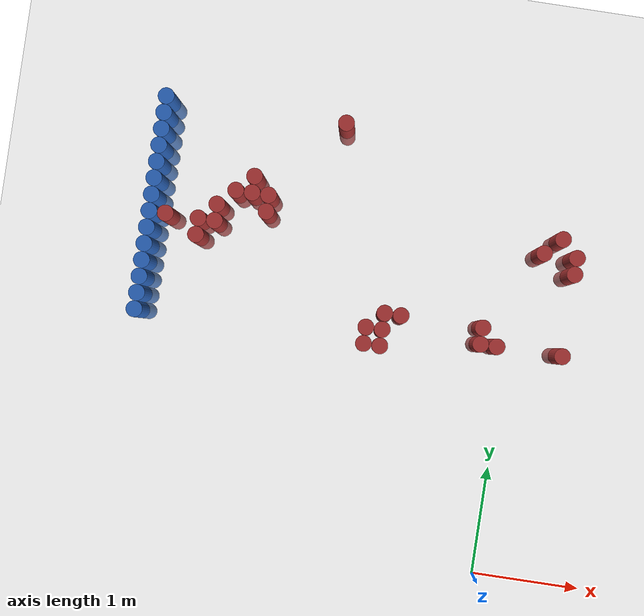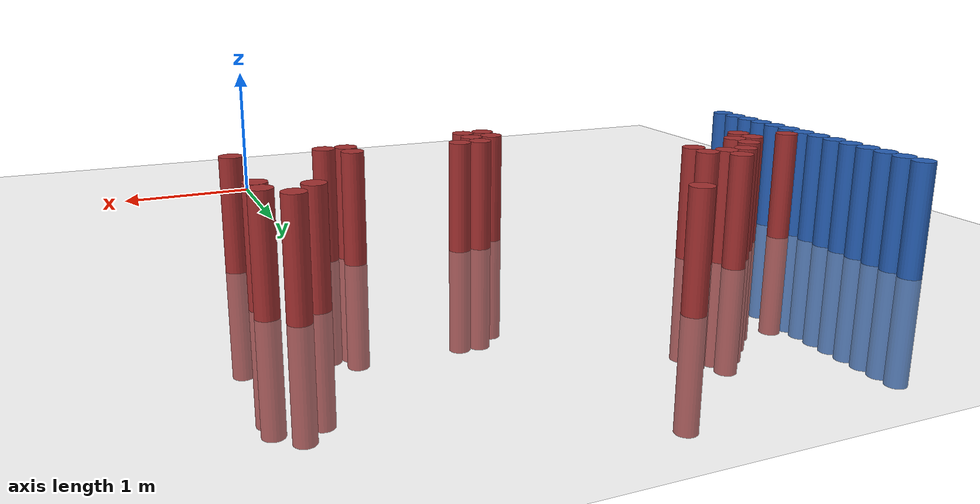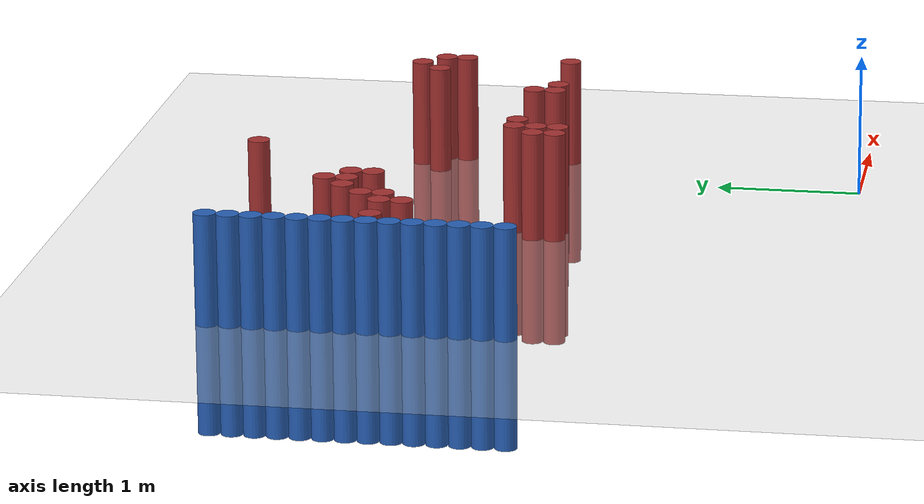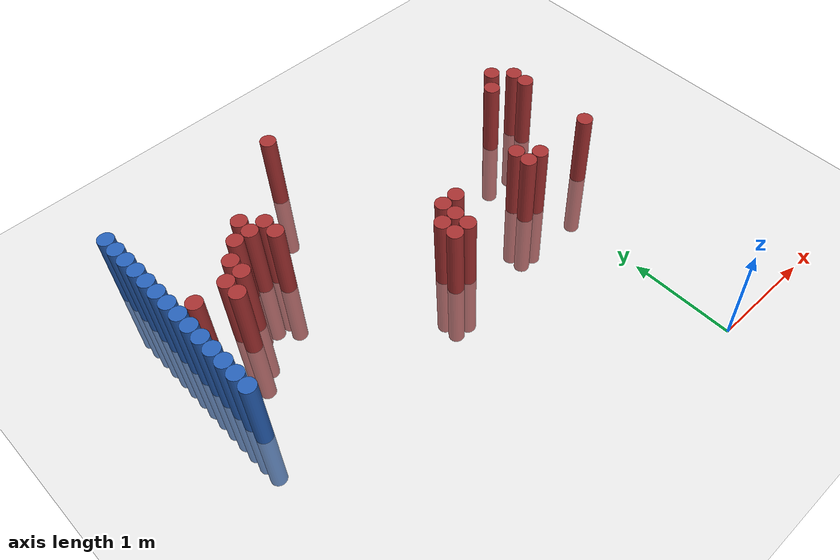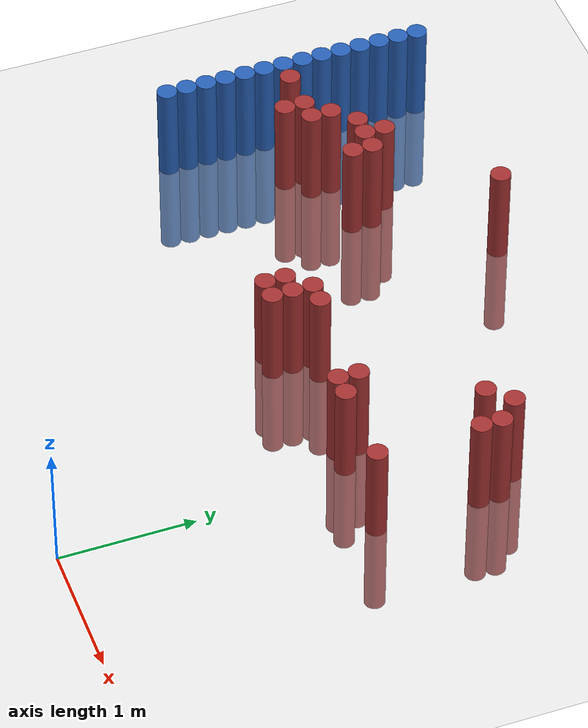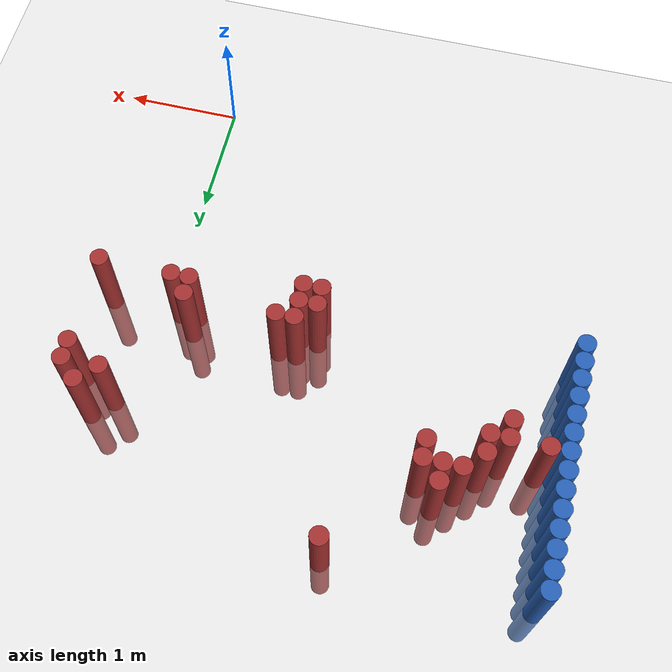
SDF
<sdf version="1.6">
 <world name="default">
  <model name="ground_plane">
   <static>1</static>
   <link name="link">
    <collision name="collision">
     <geometry><plane><normal>0 0 1</normal><size>100 100</size></plane></geometry>
     <surface><friction><ode><mu>100</mu><mu2>50</mu2></ode></friction></surface>
    </collision>
    <visual name="visual">
     <cast_shadows>0</cast_shadows>
     <geometry><plane><normal>0 0 1</normal><size>100 100</size></plane></geometry>
     <material>
      <script><uri>file://media/materials/scripts/gazebo.material</uri><name>Gazebo/Grey</name></script>
     </material>
    </visual>
   </link>
  </model>
  <model name="unit_cylinder_141">
   <static>1</static>
   <pose>-3.425000 1.975000 0.000000 0.000000 0.000000 0.000000</pose>
   <link name="link">
    <inertial>
     <mass>1</mass>
     <inertia><ixx>0.145833</ixx><ixy>0</ixy><ixz>0</ixz><iyy>0.145833</iyy><iyz>0</iyz><izz>0.125</izz></inertia>
    </inertial>
    <collision name="collision">
     <geometry><cylinder><radius>0.075000</radius><length>1.5</length></cylinder></geometry>
    </collision>
    <visual name="visual">
     <geometry><cylinder><radius>0.075000</radius><length>1.5</length></cylinder></geometry>
     <material>
      <ambient>0.152000 0.379000 0.720000 1</ambient>
      <diffuse>0.152000 0.379000 0.720000 1</diffuse>
     </material>
     <material>
      <script><name>Gazebo/Grey</name><uri>file://media/materials/scripts/gazebo.material</uri></script>
     </material>
    </visual>
   </link>
  </model>
  <model name="unit_cylinder_143">
   <static>1</static>
   <pose>-3.425000 2.125000 0.000000 0.000000 0.000000 0.000000</pose>
   <link name="link">
    <inertial>
     <mass>1</mass>
     <inertia><ixx>0.145833</ixx><ixy>0</ixy><ixz>0</ixz><iyy>0.145833</iyy><iyz>0</iyz><izz>0.125</izz></inertia>
    </inertial>
    <collision name="collision">
     <geometry><cylinder><radius>0.075000</radius><length>1.5</length></cylinder></geometry>
    </collision>
    <visual name="visual">
     <geometry><cylinder><radius>0.075000</radius><length>1.5</length></cylinder></geometry>
     <material>
      <ambient>0.152000 0.379000 0.720000 1</ambient>
      <diffuse>0.152000 0.379000 0.720000 1</diffuse>
     </material>
     <material>
      <script><name>Gazebo/Grey</name><uri>file://media/materials/scripts/gazebo.material</uri></script>
     </material>
    </visual>
   </link>
  </model>
  <model name="unit_cylinder_145">
   <static>1</static>
   <pose>-3.425000 2.275000 0.000000 0.000000 0.000000 0.000000</pose>
   <link name="link">
    <inertial>
     <mass>1</mass>
     <inertia><ixx>0.145833</ixx><ixy>0</ixy><ixz>0</ixz><iyy>0.145833</iyy><iyz>0</iyz><izz>0.125</izz></inertia>
    </inertial>
    <collision name="collision">
     <geometry><cylinder><radius>0.075000</radius><length>1.5</length></cylinder></geometry>
    </collision>
    <visual name="visual">
     <geometry><cylinder><radius>0.075000</radius><length>1.5</length></cylinder></geometry>
     <material>
      <ambient>0.152000 0.379000 0.720000 1</ambient>
      <diffuse>0.152000 0.379000 0.720000 1</diffuse>
     </material>
     <material>
      <script><name>Gazebo/Grey</name><uri>file://media/materials/scripts/gazebo.material</uri></script>
     </material>
    </visual>
   </link>
  </model>
  <model name="unit_cylinder_147">
   <static>1</static>
   <pose>-3.425000 2.425000 0.000000 0.000000 0.000000 0.000000</pose>
   <link name="link">
    <inertial>
     <mass>1</mass>
     <inertia><ixx>0.145833</ixx><ixy>0</ixy><ixz>0</ixz><iyy>0.145833</iyy><iyz>0</iyz><izz>0.125</izz></inertia>
    </inertial>
    <collision name="collision">
     <geometry><cylinder><radius>0.075000</radius><length>1.5</length></cylinder></geometry>
    </collision>
    <visual name="visual">
     <geometry><cylinder><radius>0.075000</radius><length>1.5</length></cylinder></geometry>
     <material>
      <ambient>0.152000 0.379000 0.720000 1</ambient>
      <diffuse>0.152000 0.379000 0.720000 1</diffuse>
     </material>
     <material>
      <script><name>Gazebo/Grey</name><uri>file://media/materials/scripts/gazebo.material</uri></script>
     </material>
    </visual>
   </link>
  </model>
  <model name="unit_cylinder_149">
   <static>1</static>
   <pose>-3.425000 2.575000 0.000000 0.000000 0.000000 0.000000</pose>
   <link name="link">
    <inertial>
     <mass>1</mass>
     <inertia><ixx>0.145833</ixx><ixy>0</ixy><ixz>0</ixz><iyy>0.145833</iyy><iyz>0</iyz><izz>0.125</izz></inertia>
    </inertial>
    <collision name="collision">
     <geometry><cylinder><radius>0.075000</radius><length>1.5</length></cylinder></geometry>
    </collision>
    <visual name="visual">
     <geometry><cylinder><radius>0.075000</radius><length>1.5</length></cylinder></geometry>
     <material>
      <ambient>0.152000 0.379000 0.720000 1</ambient>
      <diffuse>0.152000 0.379000 0.720000 1</diffuse>
     </material>
     <material>
      <script><name>Gazebo/Grey</name><uri>file://media/materials/scripts/gazebo.material</uri></script>
     </material>
    </visual>
   </link>
  </model>
  <model name="unit_cylinder_151">
   <static>1</static>
   <pose>-3.425000 2.725000 0.000000 0.000000 0.000000 0.000000</pose>
   <link name="link">
    <inertial>
     <mass>1</mass>
     <inertia><ixx>0.145833</ixx><ixy>0</ixy><ixz>0</ixz><iyy>0.145833</iyy><iyz>0</iyz><izz>0.125</izz></inertia>
    </inertial>
    <collision name="collision">
     <geometry><cylinder><radius>0.075000</radius><length>1.5</length></cylinder></geometry>
    </collision>
    <visual name="visual">
     <geometry><cylinder><radius>0.075000</radius><length>1.5</length></cylinder></geometry>
     <material>
      <ambient>0.152000 0.379000 0.720000 1</ambient>
      <diffuse>0.152000 0.379000 0.720000 1</diffuse>
     </material>
     <material>
      <script><name>Gazebo/Grey</name><uri>file://media/materials/scripts/gazebo.material</uri></script>
     </material>
    </visual>
   </link>
  </model>
  <model name="unit_cylinder_153">
   <static>1</static>
   <pose>-3.425000 2.875000 0.000000 0.000000 0.000000 0.000000</pose>
   <link name="link">
    <inertial>
     <mass>1</mass>
     <inertia><ixx>0.145833</ixx><ixy>0</ixy><ixz>0</ixz><iyy>0.145833</iyy><iyz>0</iyz><izz>0.125</izz></inertia>
    </inertial>
    <collision name="collision">
     <geometry><cylinder><radius>0.075000</radius><length>1.5</length></cylinder></geometry>
    </collision>
    <visual name="visual">
     <geometry><cylinder><radius>0.075000</radius><length>1.5</length></cylinder></geometry>
     <material>
      <ambient>0.152000 0.379000 0.720000 1</ambient>
      <diffuse>0.152000 0.379000 0.720000 1</diffuse>
     </material>
     <material>
      <script><name>Gazebo/Grey</name><uri>file://media/materials/scripts/gazebo.material</uri></script>
     </material>
    </visual>
   </link>
  </model>
  <model name="unit_cylinder_155">
   <static>1</static>
   <pose>-3.425000 3.025000 0.000000 0.000000 0.000000 0.000000</pose>
   <link name="link">
    <inertial>
     <mass>1</mass>
     <inertia><ixx>0.145833</ixx><ixy>0</ixy><ixz>0</ixz><iyy>0.145833</iyy><iyz>0</iyz><izz>0.125</izz></inertia>
    </inertial>
    <collision name="collision">
     <geometry><cylinder><radius>0.075000</radius><length>1.5</length></cylinder></geometry>
    </collision>
    <visual name="visual">
     <geometry><cylinder><radius>0.075000</radius><length>1.5</length></cylinder></geometry>
     <material>
      <ambient>0.152000 0.379000 0.720000 1</ambient>
      <diffuse>0.152000 0.379000 0.720000 1</diffuse>
     </material>
     <material>
      <script><name>Gazebo/Grey</name><uri>file://media/materials/scripts/gazebo.material</uri></script>
     </material>
    </visual>
   </link>
  </model>
  <model name="unit_cylinder_157">
   <static>1</static>
   <pose>-3.425000 3.175000 0.000000 0.000000 0.000000 0.000000</pose>
   <link name="link">
    <inertial>
     <mass>1</mass>
     <inertia><ixx>0.145833</ixx><ixy>0</ixy><ixz>0</ixz><iyy>0.145833</iyy><iyz>0</iyz><izz>0.125</izz></inertia>
    </inertial>
    <collision name="collision">
     <geometry><cylinder><radius>0.075000</radius><length>1.5</length></cylinder></geometry>
    </collision>
    <visual name="visual">
     <geometry><cylinder><radius>0.075000</radius><length>1.5</length></cylinder></geometry>
     <material>
      <ambient>0.152000 0.379000 0.720000 1</ambient>
      <diffuse>0.152000 0.379000 0.720000 1</diffuse>
     </material>
     <material>
      <script><name>Gazebo/Grey</name><uri>file://media/materials/scripts/gazebo.material</uri></script>
     </material>
    </visual>
   </link>
  </model>
  <model name="unit_cylinder_159">
   <static>1</static>
   <pose>-3.425000 3.325000 0.000000 0.000000 0.000000 0.000000</pose>
   <link name="link">
    <inertial>
     <mass>1</mass>
     <inertia><ixx>0.145833</ixx><ixy>0</ixy><ixz>0</ixz><iyy>0.145833</iyy><iyz>0</iyz><izz>0.125</izz></inertia>
    </inertial>
    <collision name="collision">
     <geometry><cylinder><radius>0.075000</radius><length>1.5</length></cylinder></geometry>
    </collision>
    <visual name="visual">
     <geometry><cylinder><radius>0.075000</radius><length>1.5</length></cylinder></geometry>
     <material>
      <ambient>0.152000 0.379000 0.720000 1</ambient>
      <diffuse>0.152000 0.379000 0.720000 1</diffuse>
     </material>
     <material>
      <script><name>Gazebo/Grey</name><uri>file://media/materials/scripts/gazebo.material</uri></script>
     </material>
    </visual>
   </link>
  </model>
  <model name="unit_cylinder_161">
   <static>1</static>
   <pose>-3.425000 3.475000 0.000000 0.000000 0.000000 0.000000</pose>
   <link name="link">
    <inertial>
     <mass>1</mass>
     <inertia><ixx>0.145833</ixx><ixy>0</ixy><ixz>0</ixz><iyy>0.145833</iyy><iyz>0</iyz><izz>0.125</izz></inertia>
    </inertial>
    <collision name="collision">
     <geometry><cylinder><radius>0.075000</radius><length>1.5</length></cylinder></geometry>
    </collision>
    <visual name="visual">
     <geometry><cylinder><radius>0.075000</radius><length>1.5</length></cylinder></geometry>
     <material>
      <ambient>0.152000 0.379000 0.720000 1</ambient>
      <diffuse>0.152000 0.379000 0.720000 1</diffuse>
     </material>
     <material>
      <script><name>Gazebo/Grey</name><uri>file://media/materials/scripts/gazebo.material</uri></script>
     </material>
    </visual>
   </link>
  </model>
  <model name="unit_cylinder_163">
   <static>1</static>
   <pose>-3.425000 3.625000 0.000000 0.000000 0.000000 0.000000</pose>
   <link name="link">
    <inertial>
     <mass>1</mass>
     <inertia><ixx>0.145833</ixx><ixy>0</ixy><ixz>0</ixz><iyy>0.145833</iyy><iyz>0</iyz><izz>0.125</izz></inertia>
    </inertial>
    <collision name="collision">
     <geometry><cylinder><radius>0.075000</radius><length>1.5</length></cylinder></geometry>
    </collision>
    <visual name="visual">
     <geometry><cylinder><radius>0.075000</radius><length>1.5</length></cylinder></geometry>
     <material>
      <ambient>0.152000 0.379000 0.720000 1</ambient>
      <diffuse>0.152000 0.379000 0.720000 1</diffuse>
     </material>
     <material>
      <script><name>Gazebo/Grey</name><uri>file://media/materials/scripts/gazebo.material</uri></script>
     </material>
    </visual>
   </link>
  </model>
  <model name="unit_cylinder_165">
   <static>1</static>
   <pose>-3.425000 3.775000 0.000000 0.000000 0.000000 0.000000</pose>
   <link name="link">
    <inertial>
     <mass>1</mass>
     <inertia><ixx>0.145833</ixx><ixy>0</ixy><ixz>0</ixz><iyy>0.145833</iyy><iyz>0</iyz><izz>0.125</izz></inertia>
    </inertial>
    <collision name="collision">
     <geometry><cylinder><radius>0.075000</radius><length>1.5</length></cylinder></geometry>
    </collision>
    <visual name="visual">
     <geometry><cylinder><radius>0.075000</radius><length>1.5</length></cylinder></geometry>
     <material>
      <ambient>0.152000 0.379000 0.720000 1</ambient>
      <diffuse>0.152000 0.379000 0.720000 1</diffuse>
     </material>
     <material>
      <script><name>Gazebo/Grey</name><uri>file://media/materials/scripts/gazebo.material</uri></script>
     </material>
    </visual>
   </link>
  </model>
  <model name="unit_cylinder_167">
   <static>1</static>
   <pose>-3.425000 3.925000 0.000000 0.000000 0.000000 0.000000</pose>
   <link name="link">
    <inertial>
     <mass>1</mass>
     <inertia><ixx>0.145833</ixx><ixy>0</ixy><ixz>0</ixz><iyy>0.145833</iyy><iyz>0</iyz><izz>0.125</izz></inertia>
    </inertial>
    <collision name="collision">
     <geometry><cylinder><radius>0.075000</radius><length>1.5</length></cylinder></geometry>
    </collision>
    <visual name="visual">
     <geometry><cylinder><radius>0.075000</radius><length>1.5</length></cylinder></geometry>
     <material>
      <ambient>0.152000 0.379000 0.720000 1</ambient>
      <diffuse>0.152000 0.379000 0.720000 1</diffuse>
     </material>
     <material>
      <script><name>Gazebo/Grey</name><uri>file://media/materials/scripts/gazebo.material</uri></script>
     </material>
    </visual>
   </link>
  </model>
  <model name="unit_cylinder_234">
   <static>1</static>
   <pose>-3.425000 1.975000 0.000000 0.000000 0.000000 0.000000</pose>
   <link name="link">
    <inertial>
     <mass>1</mass>
     <inertia><ixx>0.145833</ixx><ixy>0</ixy><ixz>0</ixz><iyy>0.145833</iyy><iyz>0</iyz><izz>0.125</izz></inertia>
    </inertial>
    <collision name="collision">
     <geometry><cylinder><radius>0.075000</radius><length>1.5</length></cylinder></geometry>
    </collision>
    <visual name="visual">
     <geometry><cylinder><radius>0.075000</radius><length>1.5</length></cylinder></geometry>
     <material>
      <ambient>0.152000 0.379000 0.720000 1</ambient>
      <diffuse>0.152000 0.379000 0.720000 1</diffuse>
     </material>
     <material>
      <script><name>Gazebo/Grey</name><uri>file://media/materials/scripts/gazebo.material</uri></script>
     </material>
    </visual>
   </link>
  </model>
  <model name="unit_cylinder_235">
   <static>1</static>
   <pose>-3.425000 2.125000 0.000000 0.000000 0.000000 0.000000</pose>
   <link name="link">
    <inertial>
     <mass>1</mass>
     <inertia><ixx>0.145833</ixx><ixy>0</ixy><ixz>0</ixz><iyy>0.145833</iyy><iyz>0</iyz><izz>0.125</izz></inertia>
    </inertial>
    <collision name="collision">
     <geometry><cylinder><radius>0.075000</radius><length>1.5</length></cylinder></geometry>
    </collision>
    <visual name="visual">
     <geometry><cylinder><radius>0.075000</radius><length>1.5</length></cylinder></geometry>
     <material>
      <ambient>0.152000 0.379000 0.720000 1</ambient>
      <diffuse>0.152000 0.379000 0.720000 1</diffuse>
     </material>
     <material>
      <script><name>Gazebo/Grey</name><uri>file://media/materials/scripts/gazebo.material</uri></script>
     </material>
    </visual>
   </link>
  </model>
  <model name="unit_cylinder_236">
   <static>1</static>
   <pose>-3.425000 2.275000 0.000000 0.000000 0.000000 0.000000</pose>
   <link name="link">
    <inertial>
     <mass>1</mass>
     <inertia><ixx>0.145833</ixx><ixy>0</ixy><ixz>0</ixz><iyy>0.145833</iyy><iyz>0</iyz><izz>0.125</izz></inertia>
    </inertial>
    <collision name="collision">
     <geometry><cylinder><radius>0.075000</radius><length>1.5</length></cylinder></geometry>
    </collision>
    <visual name="visual">
     <geometry><cylinder><radius>0.075000</radius><length>1.5</length></cylinder></geometry>
     <material>
      <ambient>0.152000 0.379000 0.720000 1</ambient>
      <diffuse>0.152000 0.379000 0.720000 1</diffuse>
     </material>
     <material>
      <script><name>Gazebo/Grey</name><uri>file://media/materials/scripts/gazebo.material</uri></script>
     </material>
    </visual>
   </link>
  </model>
  <model name="unit_cylinder_237">
   <static>1</static>
   <pose>-3.425000 2.425000 0.000000 0.000000 0.000000 0.000000</pose>
   <link name="link">
    <inertial>
     <mass>1</mass>
     <inertia><ixx>0.145833</ixx><ixy>0</ixy><ixz>0</ixz><iyy>0.145833</iyy><iyz>0</iyz><izz>0.125</izz></inertia>
    </inertial>
    <collision name="collision">
     <geometry><cylinder><radius>0.075000</radius><length>1.5</length></cylinder></geometry>
    </collision>
    <visual name="visual">
     <geometry><cylinder><radius>0.075000</radius><length>1.5</length></cylinder></geometry>
     <material>
      <ambient>0.152000 0.379000 0.720000 1</ambient>
      <diffuse>0.152000 0.379000 0.720000 1</diffuse>
     </material>
     <material>
      <script><name>Gazebo/Grey</name><uri>file://media/materials/scripts/gazebo.material</uri></script>
     </material>
    </visual>
   </link>
  </model>
  <model name="unit_cylinder_238">
   <static>1</static>
   <pose>-3.425000 2.575000 0.000000 0.000000 0.000000 0.000000</pose>
   <link name="link">
    <inertial>
     <mass>1</mass>
     <inertia><ixx>0.145833</ixx><ixy>0</ixy><ixz>0</ixz><iyy>0.145833</iyy><iyz>0</iyz><izz>0.125</izz></inertia>
    </inertial>
    <collision name="collision">
     <geometry><cylinder><radius>0.075000</radius><length>1.5</length></cylinder></geometry>
    </collision>
    <visual name="visual">
     <geometry><cylinder><radius>0.075000</radius><length>1.5</length></cylinder></geometry>
     <material>
      <ambient>0.152000 0.379000 0.720000 1</ambient>
      <diffuse>0.152000 0.379000 0.720000 1</diffuse>
     </material>
     <material>
      <script><name>Gazebo/Grey</name><uri>file://media/materials/scripts/gazebo.material</uri></script>
     </material>
    </visual>
   </link>
  </model>
  <model name="unit_cylinder_239">
   <static>1</static>
   <pose>-3.425000 2.725000 0.000000 0.000000 0.000000 0.000000</pose>
   <link name="link">
    <inertial>
     <mass>1</mass>
     <inertia><ixx>0.145833</ixx><ixy>0</ixy><ixz>0</ixz><iyy>0.145833</iyy><iyz>0</iyz><izz>0.125</izz></inertia>
    </inertial>
    <collision name="collision">
     <geometry><cylinder><radius>0.075000</radius><length>1.5</length></cylinder></geometry>
    </collision>
    <visual name="visual">
     <geometry><cylinder><radius>0.075000</radius><length>1.5</length></cylinder></geometry>
     <material>
      <ambient>0.152000 0.379000 0.720000 1</ambient>
      <diffuse>0.152000 0.379000 0.720000 1</diffuse>
     </material>
     <material>
      <script><name>Gazebo/Grey</name><uri>file://media/materials/scripts/gazebo.material</uri></script>
     </material>
    </visual>
   </link>
  </model>
  <model name="unit_cylinder_240">
   <static>1</static>
   <pose>-3.425000 2.875000 0.000000 0.000000 0.000000 0.000000</pose>
   <link name="link">
    <inertial>
     <mass>1</mass>
     <inertia><ixx>0.145833</ixx><ixy>0</ixy><ixz>0</ixz><iyy>0.145833</iyy><iyz>0</iyz><izz>0.125</izz></inertia>
    </inertial>
    <collision name="collision">
     <geometry><cylinder><radius>0.075000</radius><length>1.5</length></cylinder></geometry>
    </collision>
    <visual name="visual">
     <geometry><cylinder><radius>0.075000</radius><length>1.5</length></cylinder></geometry>
     <material>
      <ambient>0.152000 0.379000 0.720000 1</ambient>
      <diffuse>0.152000 0.379000 0.720000 1</diffuse>
     </material>
     <material>
      <script><name>Gazebo/Grey</name><uri>file://media/materials/scripts/gazebo.material</uri></script>
     </material>
    </visual>
   </link>
  </model>
  <model name="unit_cylinder_241">
   <static>1</static>
   <pose>-3.425000 3.025000 0.000000 0.000000 0.000000 0.000000</pose>
   <link name="link">
    <inertial>
     <mass>1</mass>
     <inertia><ixx>0.145833</ixx><ixy>0</ixy><ixz>0</ixz><iyy>0.145833</iyy><iyz>0</iyz><izz>0.125</izz></inertia>
    </inertial>
    <collision name="collision">
     <geometry><cylinder><radius>0.075000</radius><length>1.5</length></cylinder></geometry>
    </collision>
    <visual name="visual">
     <geometry><cylinder><radius>0.075000</radius><length>1.5</length></cylinder></geometry>
     <material>
      <ambient>0.152000 0.379000 0.720000 1</ambient>
      <diffuse>0.152000 0.379000 0.720000 1</diffuse>
     </material>
     <material>
      <script><name>Gazebo/Grey</name><uri>file://media/materials/scripts/gazebo.material</uri></script>
     </material>
    </visual>
   </link>
  </model>
  <model name="unit_cylinder_242">
   <static>1</static>
   <pose>-3.425000 3.175000 0.000000 0.000000 0.000000 0.000000</pose>
   <link name="link">
    <inertial>
     <mass>1</mass>
     <inertia><ixx>0.145833</ixx><ixy>0</ixy><ixz>0</ixz><iyy>0.145833</iyy><iyz>0</iyz><izz>0.125</izz></inertia>
    </inertial>
    <collision name="collision">
     <geometry><cylinder><radius>0.075000</radius><length>1.5</length></cylinder></geometry>
    </collision>
    <visual name="visual">
     <geometry><cylinder><radius>0.075000</radius><length>1.5</length></cylinder></geometry>
     <material>
      <ambient>0.152000 0.379000 0.720000 1</ambient>
      <diffuse>0.152000 0.379000 0.720000 1</diffuse>
     </material>
     <material>
      <script><name>Gazebo/Grey</name><uri>file://media/materials/scripts/gazebo.material</uri></script>
     </material>
    </visual>
   </link>
  </model>
  <model name="unit_cylinder_243">
   <static>1</static>
   <pose>-3.425000 3.325000 0.000000 0.000000 0.000000 0.000000</pose>
   <link name="link">
    <inertial>
     <mass>1</mass>
     <inertia><ixx>0.145833</ixx><ixy>0</ixy><ixz>0</ixz><iyy>0.145833</iyy><iyz>0</iyz><izz>0.125</izz></inertia>
    </inertial>
    <collision name="collision">
     <geometry><cylinder><radius>0.075000</radius><length>1.5</length></cylinder></geometry>
    </collision>
    <visual name="visual">
     <geometry><cylinder><radius>0.075000</radius><length>1.5</length></cylinder></geometry>
     <material>
      <ambient>0.152000 0.379000 0.720000 1</ambient>
      <diffuse>0.152000 0.379000 0.720000 1</diffuse>
     </material>
     <material>
      <script><name>Gazebo/Grey</name><uri>file://media/materials/scripts/gazebo.material</uri></script>
     </material>
    </visual>
   </link>
  </model>
  <model name="unit_cylinder_244">
   <static>1</static>
   <pose>-3.425000 3.475000 0.000000 0.000000 0.000000 0.000000</pose>
   <link name="link">
    <inertial>
     <mass>1</mass>
     <inertia><ixx>0.145833</ixx><ixy>0</ixy><ixz>0</ixz><iyy>0.145833</iyy><iyz>0</iyz><izz>0.125</izz></inertia>
    </inertial>
    <collision name="collision">
     <geometry><cylinder><radius>0.075000</radius><length>1.5</length></cylinder></geometry>
    </collision>
    <visual name="visual">
     <geometry><cylinder><radius>0.075000</radius><length>1.5</length></cylinder></geometry>
     <material>
      <ambient>0.152000 0.379000 0.720000 1</ambient>
      <diffuse>0.152000 0.379000 0.720000 1</diffuse>
     </material>
     <material>
      <script><name>Gazebo/Grey</name><uri>file://media/materials/scripts/gazebo.material</uri></script>
     </material>
    </visual>
   </link>
  </model>
  <model name="unit_cylinder_245">
   <static>1</static>
   <pose>-3.425000 3.625000 0.000000 0.000000 0.000000 0.000000</pose>
   <link name="link">
    <inertial>
     <mass>1</mass>
     <inertia><ixx>0.145833</ixx><ixy>0</ixy><ixz>0</ixz><iyy>0.145833</iyy><iyz>0</iyz><izz>0.125</izz></inertia>
    </inertial>
    <collision name="collision">
     <geometry><cylinder><radius>0.075000</radius><length>1.5</length></cylinder></geometry>
    </collision>
    <visual name="visual">
     <geometry><cylinder><radius>0.075000</radius><length>1.5</length></cylinder></geometry>
     <material>
      <ambient>0.152000 0.379000 0.720000 1</ambient>
      <diffuse>0.152000 0.379000 0.720000 1</diffuse>
     </material>
     <material>
      <script><name>Gazebo/Grey</name><uri>file://media/materials/scripts/gazebo.material</uri></script>
     </material>
    </visual>
   </link>
  </model>
  <model name="unit_cylinder_246">
   <static>1</static>
   <pose>-3.425000 3.775000 0.000000 0.000000 0.000000 0.000000</pose>
   <link name="link">
    <inertial>
     <mass>1</mass>
     <inertia><ixx>0.145833</ixx><ixy>0</ixy><ixz>0</ixz><iyy>0.145833</iyy><iyz>0</iyz><izz>0.125</izz></inertia>
    </inertial>
    <collision name="collision">
     <geometry><cylinder><radius>0.075000</radius><length>1.5</length></cylinder></geometry>
    </collision>
    <visual name="visual">
     <geometry><cylinder><radius>0.075000</radius><length>1.5</length></cylinder></geometry>
     <material>
      <ambient>0.152000 0.379000 0.720000 1</ambient>
      <diffuse>0.152000 0.379000 0.720000 1</diffuse>
     </material>
     <material>
      <script><name>Gazebo/Grey</name><uri>file://media/materials/scripts/gazebo.material</uri></script>
     </material>
    </visual>
   </link>
  </model>
  <model name="unit_cylinder_247">
   <static>1</static>
   <pose>-3.425000 3.925000 0.000000 0.000000 0.000000 0.000000</pose>
   <link name="link">
    <inertial>
     <mass>1</mass>
     <inertia><ixx>0.145833</ixx><ixy>0</ixy><ixz>0</ixz><iyy>0.145833</iyy><iyz>0</iyz><izz>0.125</izz></inertia>
    </inertial>
    <collision name="collision">
     <geometry><cylinder><radius>0.075000</radius><length>1.5</length></cylinder></geometry>
    </collision>
    <visual name="visual">
     <geometry><cylinder><radius>0.075000</radius><length>1.5</length></cylinder></geometry>
     <material>
      <ambient>0.152000 0.379000 0.720000 1</ambient>
      <diffuse>0.152000 0.379000 0.720000 1</diffuse>
     </material>
     <material>
      <script><name>Gazebo/Grey</name><uri>file://media/materials/scripts/gazebo.material</uri></script>
     </material>
    </visual>
   </link>
  </model>
  <model name="unit_cylinder_266">
   <static>1</static>
   <pose>-3.275000 2.875000 0.000000 0.000000 0.000000 0.000000</pose>
   <link name="link">
    <inertial>
     <mass>1</mass>
     <inertia><ixx>0.145833</ixx><ixy>0</ixy><ixz>0</ixz><iyy>0.145833</iyy><iyz>0</iyz><izz>0.125</izz></inertia>
    </inertial>
    <collision name="collision">
     <geometry><cylinder><radius>0.075000</radius><length>1.5</length></cylinder></geometry>
    </collision>
    <visual name="visual">
     <geometry><cylinder><radius>0.075000</radius><length>1.5</length></cylinder></geometry>
     <material>
      <ambient>0.648000 0.192000 0.192000 1</ambient>
      <diffuse>0.648000 0.192000 0.192000 1</diffuse>
     </material>
     <material>
      <script><name>Gazebo/Grey</name><uri>file://media/materials/scripts/gazebo.material</uri></script>
     </material>
    </visual>
   </link>
  </model>
  <model name="unit_cylinder_287">
   <static>1</static>
   <pose>-2.975000 2.725000 0.000000 0.000000 0.000000 0.000000</pose>
   <link name="link">
    <inertial>
     <mass>1</mass>
     <inertia><ixx>0.145833</ixx><ixy>0</ixy><ixz>0</ixz><iyy>0.145833</iyy><iyz>0</iyz><izz>0.125</izz></inertia>
    </inertial>
    <collision name="collision">
     <geometry><cylinder><radius>0.075000</radius><length>1.5</length></cylinder></geometry>
    </collision>
    <visual name="visual">
     <geometry><cylinder><radius>0.075000</radius><length>1.5</length></cylinder></geometry>
     <material>
      <ambient>0.648000 0.192000 0.192000 1</ambient>
      <diffuse>0.648000 0.192000 0.192000 1</diffuse>
     </material>
     <material>
      <script><name>Gazebo/Grey</name><uri>file://media/materials/scripts/gazebo.material</uri></script>
     </material>
    </visual>
   </link>
  </model>
  <model name="unit_cylinder_288">
   <static>1</static>
   <pose>-2.975000 2.875000 0.000000 0.000000 0.000000 0.000000</pose>
   <link name="link">
    <inertial>
     <mass>1</mass>
     <inertia><ixx>0.145833</ixx><ixy>0</ixy><ixz>0</ixz><iyy>0.145833</iyy><iyz>0</iyz><izz>0.125</izz></inertia>
    </inertial>
    <collision name="collision">
     <geometry><cylinder><radius>0.075000</radius><length>1.5</length></cylinder></geometry>
    </collision>
    <visual name="visual">
     <geometry><cylinder><radius>0.075000</radius><length>1.5</length></cylinder></geometry>
     <material>
      <ambient>0.648000 0.192000 0.192000 1</ambient>
      <diffuse>0.648000 0.192000 0.192000 1</diffuse>
     </material>
     <material>
      <script><name>Gazebo/Grey</name><uri>file://media/materials/scripts/gazebo.material</uri></script>
     </material>
    </visual>
   </link>
  </model>
  <model name="unit_cylinder_293">
   <static>1</static>
   <pose>-2.825000 2.875000 0.000000 0.000000 0.000000 0.000000</pose>
   <link name="link">
    <inertial>
     <mass>1</mass>
     <inertia><ixx>0.145833</ixx><ixy>0</ixy><ixz>0</ixz><iyy>0.145833</iyy><iyz>0</iyz><izz>0.125</izz></inertia>
    </inertial>
    <collision name="collision">
     <geometry><cylinder><radius>0.075000</radius><length>1.5</length></cylinder></geometry>
    </collision>
    <visual name="visual">
     <geometry><cylinder><radius>0.075000</radius><length>1.5</length></cylinder></geometry>
     <material>
      <ambient>0.648000 0.192000 0.192000 1</ambient>
      <diffuse>0.648000 0.192000 0.192000 1</diffuse>
     </material>
     <material>
      <script><name>Gazebo/Grey</name><uri>file://media/materials/scripts/gazebo.material</uri></script>
     </material>
    </visual>
   </link>
  </model>
  <model name="unit_cylinder_294">
   <static>1</static>
   <pose>-2.825000 3.025000 0.000000 0.000000 0.000000 0.000000</pose>
   <link name="link">
    <inertial>
     <mass>1</mass>
     <inertia><ixx>0.145833</ixx><ixy>0</ixy><ixz>0</ixz><iyy>0.145833</iyy><iyz>0</iyz><izz>0.125</izz></inertia>
    </inertial>
    <collision name="collision">
     <geometry><cylinder><radius>0.075000</radius><length>1.5</length></cylinder></geometry>
    </collision>
    <visual name="visual">
     <geometry><cylinder><radius>0.075000</radius><length>1.5</length></cylinder></geometry>
     <material>
      <ambient>0.648000 0.192000 0.192000 1</ambient>
      <diffuse>0.648000 0.192000 0.192000 1</diffuse>
     </material>
     <material>
      <script><name>Gazebo/Grey</name><uri>file://media/materials/scripts/gazebo.material</uri></script>
     </material>
    </visual>
   </link>
  </model>
  <model name="unit_cylinder_299">
   <static>1</static>
   <pose>-2.675000 3.175000 0.000000 0.000000 0.000000 0.000000</pose>
   <link name="link">
    <inertial>
     <mass>1</mass>
     <inertia><ixx>0.145833</ixx><ixy>0</ixy><ixz>0</ixz><iyy>0.145833</iyy><iyz>0</iyz><izz>0.125</izz></inertia>
    </inertial>
    <collision name="collision">
     <geometry><cylinder><radius>0.075000</radius><length>1.5</length></cylinder></geometry>
    </collision>
    <visual name="visual">
     <geometry><cylinder><radius>0.075000</radius><length>1.5</length></cylinder></geometry>
     <material>
      <ambient>0.648000 0.192000 0.192000 1</ambient>
      <diffuse>0.648000 0.192000 0.192000 1</diffuse>
     </material>
     <material>
      <script><name>Gazebo/Grey</name><uri>file://media/materials/scripts/gazebo.material</uri></script>
     </material>
    </visual>
   </link>
  </model>
  <model name="unit_cylinder_305">
   <static>1</static>
   <pose>-2.525000 3.175000 0.000000 0.000000 0.000000 0.000000</pose>
   <link name="link">
    <inertial>
     <mass>1</mass>
     <inertia><ixx>0.145833</ixx><ixy>0</ixy><ixz>0</ixz><iyy>0.145833</iyy><iyz>0</iyz><izz>0.125</izz></inertia>
    </inertial>
    <collision name="collision">
     <geometry><cylinder><radius>0.075000</radius><length>1.5</length></cylinder></geometry>
    </collision>
    <visual name="visual">
     <geometry><cylinder><radius>0.075000</radius><length>1.5</length></cylinder></geometry>
     <material>
      <ambient>0.648000 0.192000 0.192000 1</ambient>
      <diffuse>0.648000 0.192000 0.192000 1</diffuse>
     </material>
     <material>
      <script><name>Gazebo/Grey</name><uri>file://media/materials/scripts/gazebo.material</uri></script>
     </material>
    </visual>
   </link>
  </model>
  <model name="unit_cylinder_306">
   <static>1</static>
   <pose>-2.525000 3.325000 0.000000 0.000000 0.000000 0.000000</pose>
   <link name="link">
    <inertial>
     <mass>1</mass>
     <inertia><ixx>0.145833</ixx><ixy>0</ixy><ixz>0</ixz><iyy>0.145833</iyy><iyz>0</iyz><izz>0.125</izz></inertia>
    </inertial>
    <collision name="collision">
     <geometry><cylinder><radius>0.075000</radius><length>1.5</length></cylinder></geometry>
    </collision>
    <visual name="visual">
     <geometry><cylinder><radius>0.075000</radius><length>1.5</length></cylinder></geometry>
     <material>
      <ambient>0.648000 0.192000 0.192000 1</ambient>
      <diffuse>0.648000 0.192000 0.192000 1</diffuse>
     </material>
     <material>
      <script><name>Gazebo/Grey</name><uri>file://media/materials/scripts/gazebo.material</uri></script>
     </material>
    </visual>
   </link>
  </model>
  <model name="unit_cylinder_308">
   <static>1</static>
   <pose>-2.375000 3.025000 0.000000 0.000000 0.000000 0.000000</pose>
   <link name="link">
    <inertial>
     <mass>1</mass>
     <inertia><ixx>0.145833</ixx><ixy>0</ixy><ixz>0</ixz><iyy>0.145833</iyy><iyz>0</iyz><izz>0.125</izz></inertia>
    </inertial>
    <collision name="collision">
     <geometry><cylinder><radius>0.075000</radius><length>1.5</length></cylinder></geometry>
    </collision>
    <visual name="visual">
     <geometry><cylinder><radius>0.075000</radius><length>1.5</length></cylinder></geometry>
     <material>
      <ambient>0.648000 0.192000 0.192000 1</ambient>
      <diffuse>0.648000 0.192000 0.192000 1</diffuse>
     </material>
     <material>
      <script><name>Gazebo/Grey</name><uri>file://media/materials/scripts/gazebo.material</uri></script>
     </material>
    </visual>
   </link>
  </model>
  <model name="unit_cylinder_309">
   <static>1</static>
   <pose>-2.375000 3.175000 0.000000 0.000000 0.000000 0.000000</pose>
   <link name="link">
    <inertial>
     <mass>1</mass>
     <inertia><ixx>0.145833</ixx><ixy>0</ixy><ixz>0</ixz><iyy>0.145833</iyy><iyz>0</iyz><izz>0.125</izz></inertia>
    </inertial>
    <collision name="collision">
     <geometry><cylinder><radius>0.075000</radius><length>1.5</length></cylinder></geometry>
    </collision>
    <visual name="visual">
     <geometry><cylinder><radius>0.075000</radius><length>1.5</length></cylinder></geometry>
     <material>
      <ambient>0.648000 0.192000 0.192000 1</ambient>
      <diffuse>0.648000 0.192000 0.192000 1</diffuse>
     </material>
     <material>
      <script><name>Gazebo/Grey</name><uri>file://media/materials/scripts/gazebo.material</uri></script>
     </material>
    </visual>
   </link>
  </model>
  <model name="unit_cylinder_323">
   <static>1</static>
   <pose>-1.775000 3.925000 0.000000 0.000000 0.000000 0.000000</pose>
   <link name="link">
    <inertial>
     <mass>1</mass>
     <inertia><ixx>0.145833</ixx><ixy>0</ixy><ixz>0</ixz><iyy>0.145833</iyy><iyz>0</iyz><izz>0.125</izz></inertia>
    </inertial>
    <collision name="collision">
     <geometry><cylinder><radius>0.075000</radius><length>1.5</length></cylinder></geometry>
    </collision>
    <visual name="visual">
     <geometry><cylinder><radius>0.075000</radius><length>1.5</length></cylinder></geometry>
     <material>
      <ambient>0.648000 0.192000 0.192000 1</ambient>
      <diffuse>0.648000 0.192000 0.192000 1</diffuse>
     </material>
     <material>
      <script><name>Gazebo/Grey</name><uri>file://media/materials/scripts/gazebo.material</uri></script>
     </material>
    </visual>
   </link>
  </model>
  <model name="unit_cylinder_334">
   <static>1</static>
   <pose>-1.325000 1.975000 0.000000 0.000000 0.000000 0.000000</pose>
   <link name="link">
    <inertial>
     <mass>1</mass>
     <inertia><ixx>0.145833</ixx><ixy>0</ixy><ixz>0</ixz><iyy>0.145833</iyy><iyz>0</iyz><izz>0.125</izz></inertia>
    </inertial>
    <collision name="collision">
     <geometry><cylinder><radius>0.075000</radius><length>1.5</length></cylinder></geometry>
    </collision>
    <visual name="visual">
     <geometry><cylinder><radius>0.075000</radius><length>1.5</length></cylinder></geometry>
     <material>
      <ambient>0.648000 0.192000 0.192000 1</ambient>
      <diffuse>0.648000 0.192000 0.192000 1</diffuse>
     </material>
     <material>
      <script><name>Gazebo/Grey</name><uri>file://media/materials/scripts/gazebo.material</uri></script>
     </material>
    </visual>
   </link>
  </model>
  <model name="unit_cylinder_335">
   <static>1</static>
   <pose>-1.325000 2.125000 0.000000 0.000000 0.000000 0.000000</pose>
   <link name="link">
    <inertial>
     <mass>1</mass>
     <inertia><ixx>0.145833</ixx><ixy>0</ixy><ixz>0</ixz><iyy>0.145833</iyy><iyz>0</iyz><izz>0.125</izz></inertia>
    </inertial>
    <collision name="collision">
     <geometry><cylinder><radius>0.075000</radius><length>1.5</length></cylinder></geometry>
    </collision>
    <visual name="visual">
     <geometry><cylinder><radius>0.075000</radius><length>1.5</length></cylinder></geometry>
     <material>
      <ambient>0.648000 0.192000 0.192000 1</ambient>
      <diffuse>0.648000 0.192000 0.192000 1</diffuse>
     </material>
     <material>
      <script><name>Gazebo/Grey</name><uri>file://media/materials/scripts/gazebo.material</uri></script>
     </material>
    </visual>
   </link>
  </model>
  <model name="unit_cylinder_339">
   <static>1</static>
   <pose>-1.175000 1.975000 0.000000 0.000000 0.000000 0.000000</pose>
   <link name="link">
    <inertial>
     <mass>1</mass>
     <inertia><ixx>0.145833</ixx><ixy>0</ixy><ixz>0</ixz><iyy>0.145833</iyy><iyz>0</iyz><izz>0.125</izz></inertia>
    </inertial>
    <collision name="collision">
     <geometry><cylinder><radius>0.075000</radius><length>1.5</length></cylinder></geometry>
    </collision>
    <visual name="visual">
     <geometry><cylinder><radius>0.075000</radius><length>1.5</length></cylinder></geometry>
     <material>
      <ambient>0.648000 0.192000 0.192000 1</ambient>
      <diffuse>0.648000 0.192000 0.192000 1</diffuse>
     </material>
     <material>
      <script><name>Gazebo/Grey</name><uri>file://media/materials/scripts/gazebo.material</uri></script>
     </material>
    </visual>
   </link>
  </model>
  <model name="unit_cylinder_340">
   <static>1</static>
   <pose>-1.175000 2.125000 0.000000 0.000000 0.000000 0.000000</pose>
   <link name="link">
    <inertial>
     <mass>1</mass>
     <inertia><ixx>0.145833</ixx><ixy>0</ixy><ixz>0</ixz><iyy>0.145833</iyy><iyz>0</iyz><izz>0.125</izz></inertia>
    </inertial>
    <collision name="collision">
     <geometry><cylinder><radius>0.075000</radius><length>1.5</length></cylinder></geometry>
    </collision>
    <visual name="visual">
     <geometry><cylinder><radius>0.075000</radius><length>1.5</length></cylinder></geometry>
     <material>
      <ambient>0.648000 0.192000 0.192000 1</ambient>
      <diffuse>0.648000 0.192000 0.192000 1</diffuse>
     </material>
     <material>
      <script><name>Gazebo/Grey</name><uri>file://media/materials/scripts/gazebo.material</uri></script>
     </material>
    </visual>
   </link>
  </model>
  <model name="unit_cylinder_341">
   <static>1</static>
   <pose>-1.175000 2.275000 0.000000 0.000000 0.000000 0.000000</pose>
   <link name="link">
    <inertial>
     <mass>1</mass>
     <inertia><ixx>0.145833</ixx><ixy>0</ixy><ixz>0</ixz><iyy>0.145833</iyy><iyz>0</iyz><izz>0.125</izz></inertia>
    </inertial>
    <collision name="collision">
     <geometry><cylinder><radius>0.075000</radius><length>1.5</length></cylinder></geometry>
    </collision>
    <visual name="visual">
     <geometry><cylinder><radius>0.075000</radius><length>1.5</length></cylinder></geometry>
     <material>
      <ambient>0.648000 0.192000 0.192000 1</ambient>
      <diffuse>0.648000 0.192000 0.192000 1</diffuse>
     </material>
     <material>
      <script><name>Gazebo/Grey</name><uri>file://media/materials/scripts/gazebo.material</uri></script>
     </material>
    </visual>
   </link>
  </model>
  <model name="unit_cylinder_352">
   <static>1</static>
   <pose>-1.025000 2.275000 0.000000 0.000000 0.000000 0.000000</pose>
   <link name="link">
    <inertial>
     <mass>1</mass>
     <inertia><ixx>0.145833</ixx><ixy>0</ixy><ixz>0</ixz><iyy>0.145833</iyy><iyz>0</iyz><izz>0.125</izz></inertia>
    </inertial>
    <collision name="collision">
     <geometry><cylinder><radius>0.075000</radius><length>1.5</length></cylinder></geometry>
    </collision>
    <visual name="visual">
     <geometry><cylinder><radius>0.075000</radius><length>1.5</length></cylinder></geometry>
     <material>
      <ambient>0.648000 0.192000 0.192000 1</ambient>
      <diffuse>0.648000 0.192000 0.192000 1</diffuse>
     </material>
     <material>
      <script><name>Gazebo/Grey</name><uri>file://media/materials/scripts/gazebo.material</uri></script>
     </material>
    </visual>
   </link>
  </model>
  <model name="unit_cylinder_369">
   <static>1</static>
   <pose>-0.275000 2.125000 0.000000 0.000000 0.000000 0.000000</pose>
   <link name="link">
    <inertial>
     <mass>1</mass>
     <inertia><ixx>0.145833</ixx><ixy>0</ixy><ixz>0</ixz><iyy>0.145833</iyy><iyz>0</iyz><izz>0.125</izz></inertia>
    </inertial>
    <collision name="collision">
     <geometry><cylinder><radius>0.075000</radius><length>1.5</length></cylinder></geometry>
    </collision>
    <visual name="visual">
     <geometry><cylinder><radius>0.075000</radius><length>1.5</length></cylinder></geometry>
     <material>
      <ambient>0.648000 0.192000 0.192000 1</ambient>
      <diffuse>0.648000 0.192000 0.192000 1</diffuse>
     </material>
     <material>
      <script><name>Gazebo/Grey</name><uri>file://media/materials/scripts/gazebo.material</uri></script>
     </material>
    </visual>
   </link>
  </model>
  <model name="unit_cylinder_370">
   <static>1</static>
   <pose>-0.275000 2.275000 0.000000 0.000000 0.000000 0.000000</pose>
   <link name="link">
    <inertial>
     <mass>1</mass>
     <inertia><ixx>0.145833</ixx><ixy>0</ixy><ixz>0</ixz><iyy>0.145833</iyy><iyz>0</iyz><izz>0.125</izz></inertia>
    </inertial>
    <collision name="collision">
     <geometry><cylinder><radius>0.075000</radius><length>1.5</length></cylinder></geometry>
    </collision>
    <visual name="visual">
     <geometry><cylinder><radius>0.075000</radius><length>1.5</length></cylinder></geometry>
     <material>
      <ambient>0.648000 0.192000 0.192000 1</ambient>
      <diffuse>0.648000 0.192000 0.192000 1</diffuse>
     </material>
     <material>
      <script><name>Gazebo/Grey</name><uri>file://media/materials/scripts/gazebo.material</uri></script>
     </material>
    </visual>
   </link>
  </model>
  <model name="unit_cylinder_376">
   <static>1</static>
   <pose>-0.125000 2.125000 0.000000 0.000000 0.000000 0.000000</pose>
   <link name="link">
    <inertial>
     <mass>1</mass>
     <inertia><ixx>0.145833</ixx><ixy>0</ixy><ixz>0</ixz><iyy>0.145833</iyy><iyz>0</iyz><izz>0.125</izz></inertia>
    </inertial>
    <collision name="collision">
     <geometry><cylinder><radius>0.075000</radius><length>1.5</length></cylinder></geometry>
    </collision>
    <visual name="visual">
     <geometry><cylinder><radius>0.075000</radius><length>1.5</length></cylinder></geometry>
     <material>
      <ambient>0.648000 0.192000 0.192000 1</ambient>
      <diffuse>0.648000 0.192000 0.192000 1</diffuse>
     </material>
     <material>
      <script><name>Gazebo/Grey</name><uri>file://media/materials/scripts/gazebo.material</uri></script>
     </material>
    </visual>
   </link>
  </model>
  <model name="unit_cylinder_381">
   <static>1</static>
   <pose>0.175000 3.025000 0.000000 0.000000 0.000000 0.000000</pose>
   <link name="link">
    <inertial>
     <mass>1</mass>
     <inertia><ixx>0.145833</ixx><ixy>0</ixy><ixz>0</ixz><iyy>0.145833</iyy><iyz>0</iyz><izz>0.125</izz></inertia>
    </inertial>
    <collision name="collision">
     <geometry><cylinder><radius>0.075000</radius><length>1.5</length></cylinder></geometry>
    </collision>
    <visual name="visual">
     <geometry><cylinder><radius>0.075000</radius><length>1.5</length></cylinder></geometry>
     <material>
      <ambient>0.648000 0.192000 0.192000 1</ambient>
      <diffuse>0.648000 0.192000 0.192000 1</diffuse>
     </material>
     <material>
      <script><name>Gazebo/Grey</name><uri>file://media/materials/scripts/gazebo.material</uri></script>
     </material>
    </visual>
   </link>
  </model>
  <model name="unit_cylinder_384">
   <static>1</static>
   <pose>0.325000 3.175000 0.000000 0.000000 0.000000 0.000000</pose>
   <link name="link">
    <inertial>
     <mass>1</mass>
     <inertia><ixx>0.145833</ixx><ixy>0</ixy><ixz>0</ixz><iyy>0.145833</iyy><iyz>0</iyz><izz>0.125</izz></inertia>
    </inertial>
    <collision name="collision">
     <geometry><cylinder><radius>0.075000</radius><length>1.5</length></cylinder></geometry>
    </collision>
    <visual name="visual">
     <geometry><cylinder><radius>0.075000</radius><length>1.5</length></cylinder></geometry>
     <material>
      <ambient>0.648000 0.192000 0.192000 1</ambient>
      <diffuse>0.648000 0.192000 0.192000 1</diffuse>
     </material>
     <material>
      <script><name>Gazebo/Grey</name><uri>file://media/materials/scripts/gazebo.material</uri></script>
     </material>
    </visual>
   </link>
  </model>
  <model name="unit_cylinder_385">
   <static>1</static>
   <pose>0.475000 2.125000 0.000000 0.000000 0.000000 0.000000</pose>
   <link name="link">
    <inertial>
     <mass>1</mass>
     <inertia><ixx>0.145833</ixx><ixy>0</ixy><ixz>0</ixz><iyy>0.145833</iyy><iyz>0</iyz><izz>0.125</izz></inertia>
    </inertial>
    <collision name="collision">
     <geometry><cylinder><radius>0.075000</radius><length>1.5</length></cylinder></geometry>
    </collision>
    <visual name="visual">
     <geometry><cylinder><radius>0.075000</radius><length>1.5</length></cylinder></geometry>
     <material>
      <ambient>0.648000 0.192000 0.192000 1</ambient>
      <diffuse>0.648000 0.192000 0.192000 1</diffuse>
     </material>
     <material>
      <script><name>Gazebo/Grey</name><uri>file://media/materials/scripts/gazebo.material</uri></script>
     </material>
    </visual>
   </link>
  </model>
  <model name="unit_cylinder_386">
   <static>1</static>
   <pose>0.475000 2.875000 0.000000 0.000000 0.000000 0.000000</pose>
   <link name="link">
    <inertial>
     <mass>1</mass>
     <inertia><ixx>0.145833</ixx><ixy>0</ixy><ixz>0</ixz><iyy>0.145833</iyy><iyz>0</iyz><izz>0.125</izz></inertia>
    </inertial>
    <collision name="collision">
     <geometry><cylinder><radius>0.075000</radius><length>1.5</length></cylinder></geometry>
    </collision>
    <visual name="visual">
     <geometry><cylinder><radius>0.075000</radius><length>1.5</length></cylinder></geometry>
     <material>
      <ambient>0.648000 0.192000 0.192000 1</ambient>
      <diffuse>0.648000 0.192000 0.192000 1</diffuse>
     </material>
     <material>
      <script><name>Gazebo/Grey</name><uri>file://media/materials/scripts/gazebo.material</uri></script>
     </material>
    </visual>
   </link>
  </model>
  <model name="unit_cylinder_387">
   <static>1</static>
   <pose>0.475000 3.025000 0.000000 0.000000 0.000000 0.000000</pose>
   <link name="link">
    <inertial>
     <mass>1</mass>
     <inertia><ixx>0.145833</ixx><ixy>0</ixy><ixz>0</ixz><iyy>0.145833</iyy><iyz>0</iyz><izz>0.125</izz></inertia>
    </inertial>
    <collision name="collision">
     <geometry><cylinder><radius>0.075000</radius><length>1.5</length></cylinder></geometry>
    </collision>
    <visual name="visual">
     <geometry><cylinder><radius>0.075000</radius><length>1.5</length></cylinder></geometry>
     <material>
      <ambient>0.648000 0.192000 0.192000 1</ambient>
      <diffuse>0.648000 0.192000 0.192000 1</diffuse>
     </material>
     <material>
      <script><name>Gazebo/Grey</name><uri>file://media/materials/scripts/gazebo.material</uri></script>
     </material>
    </visual>
   </link>
  </model>
 </world>
</sdf>
